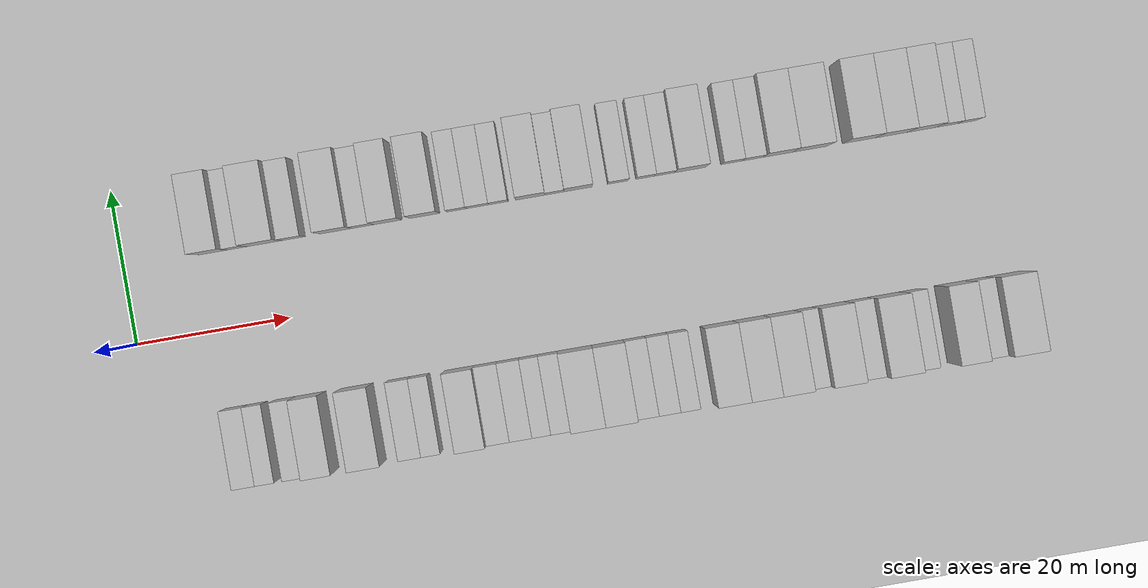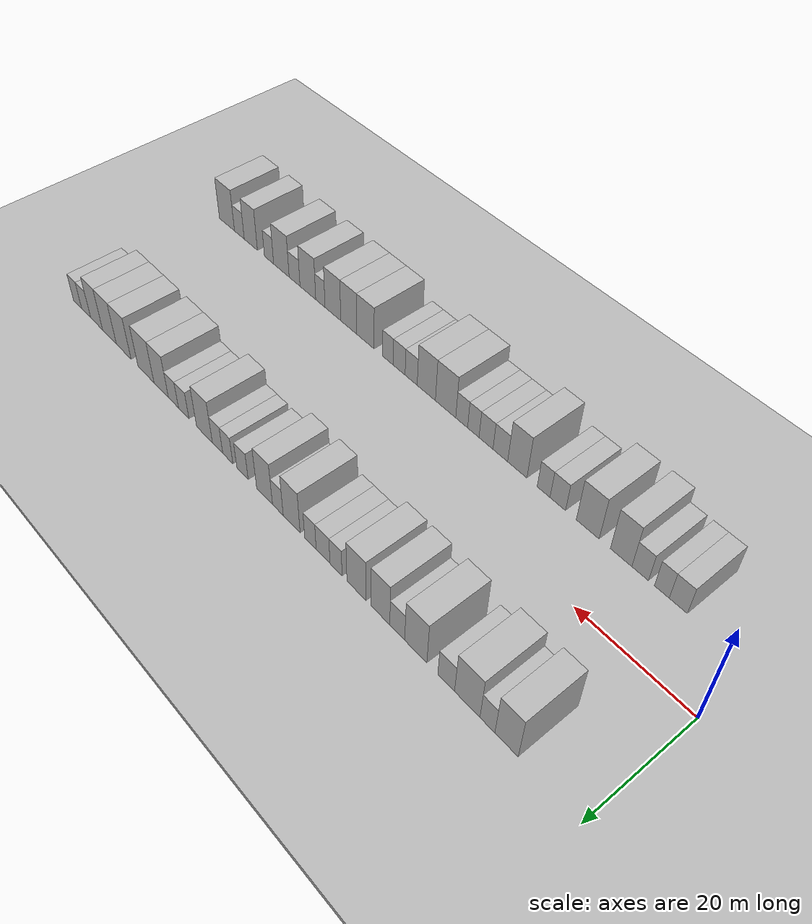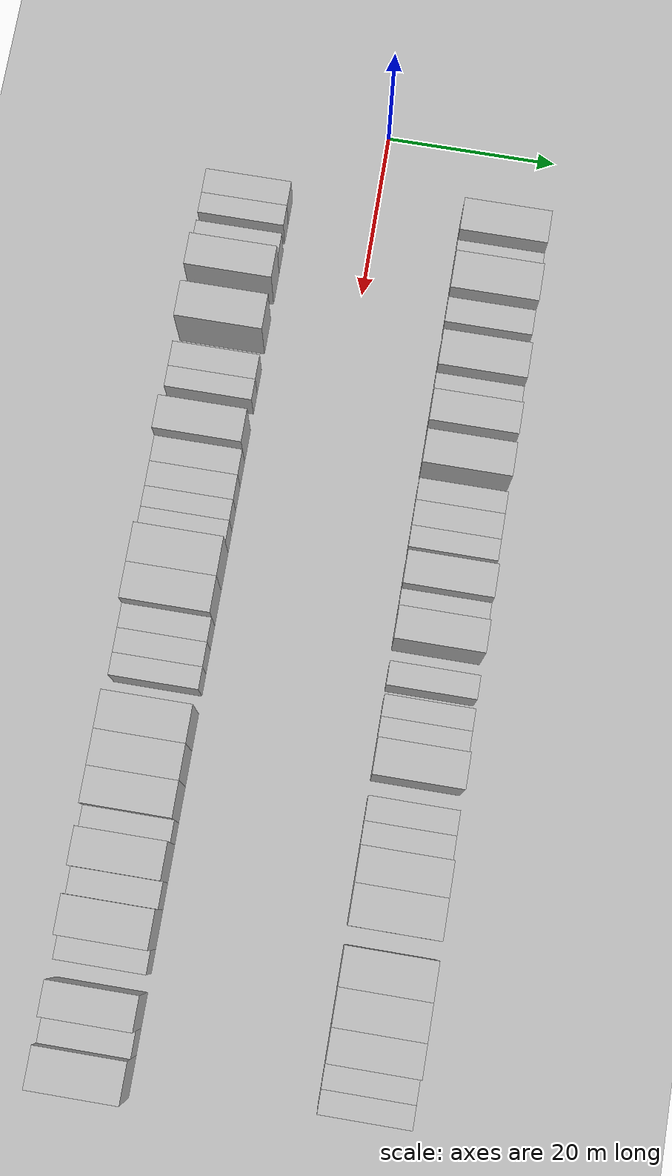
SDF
<sdf version="1.6">
 <world name="default">
  <include><name>ground_plane_1</name><uri>model://HANNAS_ground_plane</uri></include>
  <include>
   <name>ground_plane_2</name>
   <uri>model://HANNAS_ground_plane</uri>
   <pose>100 0 0  0 0 0</pose>
  </include>
  <model name="building_1">
   <static>1</static>
   <pose>11.9355 15.0000 0 0.000000 0.000000 1.570796</pose>
   <link name="link">
    <pose>0 0 4.50 0 0 0</pose>
    <collision name="collision"><geometry><box><size>10.0000 3.8709 9.0000</size></box></geometry></collision>
    <visual name="visual">
     <cast_shadows>0</cast_shadows>
     <geometry><box><size>10.0000 3.8709 9.0000</size></box></geometry>
     <material>
      <script>
       <uri>model://HANNAS_wall/materials/scripts</uri>
       <uri>model://HANNAS_wall/materials/textures</uri>
       <name>vrc/HANNAS_wall</name>
      </script>
     </material>
    </visual>
   </link>
  </model>
  <model name="building_2">
   <static>1</static>
   <pose>15.1357 15.0000 0 0.000000 0.000000 1.570796</pose>
   <link name="link">
    <pose>0 0 3.00 0 0 0</pose>
    <collision name="collision"><geometry><box><size>10.0000 2.5296 6.0000</size></box></geometry></collision>
    <visual name="visual">
     <cast_shadows>0</cast_shadows>
     <geometry><box><size>10.0000 2.5296 6.0000</size></box></geometry>
     <material>
      <script>
       <uri>model://HANNAS_wall/materials/scripts</uri>
       <uri>model://HANNAS_wall/materials/textures</uri>
       <name>vrc/HANNAS_wall</name>
      </script>
     </material>
    </visual>
   </link>
  </model>
  <model name="building_3">
   <static>1</static>
   <pose>18.6159 15.0000 0 0.000000 0.000000 1.570796</pose>
   <link name="link">
    <pose>0 0 4.50 0 0 0</pose>
    <collision name="collision"><geometry><box><size>10.0000 4.4307 9.0000</size></box></geometry></collision>
    <visual name="visual">
     <cast_shadows>0</cast_shadows>
     <geometry><box><size>10.0000 4.4307 9.0000</size></box></geometry>
     <material>
      <script>
       <uri>model://HANNAS_wall/materials/scripts</uri>
       <uri>model://HANNAS_wall/materials/textures</uri>
       <name>vrc/HANNAS_wall</name>
      </script>
     </material>
    </visual>
   </link>
  </model>
  <model name="building_4">
   <static>1</static>
   <pose>22.3298 15.0000 0 0.000000 0.000000 1.570796</pose>
   <link name="link">
    <pose>0 0 3.00 0 0 0</pose>
    <collision name="collision"><geometry><box><size>10.0000 2.9972 6.0000</size></box></geometry></collision>
    <visual name="visual">
     <cast_shadows>0</cast_shadows>
     <geometry><box><size>10.0000 2.9972 6.0000</size></box></geometry>
     <material>
      <script>
       <uri>model://HANNAS_wall/materials/scripts</uri>
       <uri>model://HANNAS_wall/materials/textures</uri>
       <name>vrc/HANNAS_wall</name>
      </script>
     </material>
    </visual>
   </link>
  </model>
  <model name="building_5">
   <static>1</static>
   <pose>27.8996 15.0000 0 0.000000 0.000000 1.570796</pose>
   <link name="link">
    <pose>0 0 4.50 0 0 0</pose>
    <collision name="collision"><geometry><box><size>10.0000 4.1425 9.0000</size></box></geometry></collision>
    <visual name="visual">
     <cast_shadows>0</cast_shadows>
     <geometry><box><size>10.0000 4.1425 9.0000</size></box></geometry>
     <material>
      <script>
       <uri>model://HANNAS_wall/materials/scripts</uri>
       <uri>model://HANNAS_wall/materials/textures</uri>
       <name>vrc/HANNAS_wall</name>
      </script>
     </material>
    </visual>
   </link>
  </model>
  <model name="building_6">
   <static>1</static>
   <pose>31.3976 15.0000 0 0.000000 0.000000 1.570796</pose>
   <link name="link">
    <pose>0 0 3.00 0 0 0</pose>
    <collision name="collision"><geometry><box><size>10.0000 2.8534 6.0000</size></box></geometry></collision>
    <visual name="visual">
     <cast_shadows>0</cast_shadows>
     <geometry><box><size>10.0000 2.8534 6.0000</size></box></geometry>
     <material>
      <script>
       <uri>model://HANNAS_wall/materials/scripts</uri>
       <uri>model://HANNAS_wall/materials/textures</uri>
       <name>vrc/HANNAS_wall</name>
      </script>
     </material>
    </visual>
   </link>
  </model>
  <model name="building_7">
   <static>1</static>
   <pose>34.6530 15.0000 0 0.000000 0.000000 1.570796</pose>
   <link name="link">
    <pose>0 0 4.50 0 0 0</pose>
    <collision name="collision"><geometry><box><size>10.0000 3.6575 9.0000</size></box></geometry></collision>
    <visual name="visual">
     <cast_shadows>0</cast_shadows>
     <geometry><box><size>10.0000 3.6575 9.0000</size></box></geometry>
     <material>
      <script>
       <uri>model://HANNAS_wall/materials/scripts</uri>
       <uri>model://HANNAS_wall/materials/textures</uri>
       <name>vrc/HANNAS_wall</name>
      </script>
     </material>
    </visual>
   </link>
  </model>
  <model name="building_8">
   <static>1</static>
   <pose>39.4240 15.0000 0 0.000000 0.000000 1.570796</pose>
   <link name="link">
    <pose>0 0 4.50 0 0 0</pose>
    <collision name="collision"><geometry><box><size>10.0000 3.8845 9.0000</size></box></geometry></collision>
    <visual name="visual">
     <cast_shadows>0</cast_shadows>
     <geometry><box><size>10.0000 3.8845 9.0000</size></box></geometry>
     <material>
      <script>
       <uri>model://HANNAS_wall/materials/scripts</uri>
       <uri>model://HANNAS_wall/materials/textures</uri>
       <name>vrc/HANNAS_wall</name>
      </script>
     </material>
    </visual>
   </link>
  </model>
  <model name="building_9">
   <static>1</static>
   <pose>43.6304 15.0000 0 0.000000 0.000000 1.570796</pose>
   <link name="link">
    <pose>0 0 3.00 0 0 0</pose>
    <collision name="collision"><geometry><box><size>10.0000 2.5283 6.0000</size></box></geometry></collision>
    <visual name="visual">
     <cast_shadows>0</cast_shadows>
     <geometry><box><size>10.0000 2.5283 6.0000</size></box></geometry>
     <material>
      <script>
       <uri>model://HANNAS_wall/materials/scripts</uri>
       <uri>model://HANNAS_wall/materials/textures</uri>
       <name>vrc/HANNAS_wall</name>
      </script>
     </material>
    </visual>
   </link>
  </model>
  <model name="building_10">
   <static>1</static>
   <pose>46.3620 15.0000 0 0.000000 0.000000 1.570796</pose>
   <link name="link">
    <pose>0 0 3.00 0 0 0</pose>
    <collision name="collision"><geometry><box><size>10.0000 2.9349 6.0000</size></box></geometry></collision>
    <visual name="visual">
     <cast_shadows>0</cast_shadows>
     <geometry><box><size>10.0000 2.9349 6.0000</size></box></geometry>
     <material>
      <script>
       <uri>model://HANNAS_wall/materials/scripts</uri>
       <uri>model://HANNAS_wall/materials/textures</uri>
       <name>vrc/HANNAS_wall</name>
      </script>
     </material>
    </visual>
   </link>
  </model>
  <model name="building_11">
   <static>1</static>
   <pose>49.0717 15.0000 0 0.000000 0.000000 1.570796</pose>
   <link name="link">
    <pose>0 0 3.00 0 0 0</pose>
    <collision name="collision"><geometry><box><size>10.0000 2.4846 6.0000</size></box></geometry></collision>
    <visual name="visual">
     <cast_shadows>0</cast_shadows>
     <geometry><box><size>10.0000 2.4846 6.0000</size></box></geometry>
     <material>
      <script>
       <uri>model://HANNAS_wall/materials/scripts</uri>
       <uri>model://HANNAS_wall/materials/textures</uri>
       <name>vrc/HANNAS_wall</name>
      </script>
     </material>
    </visual>
   </link>
  </model>
  <model name="building_12">
   <static>1</static>
   <pose>53.1930 15.0000 0 0.000000 0.000000 1.570796</pose>
   <link name="link">
    <pose>0 0 4.50 0 0 0</pose>
    <collision name="collision"><geometry><box><size>10.0000 3.7579 9.0000</size></box></geometry></collision>
    <visual name="visual">
     <cast_shadows>0</cast_shadows>
     <geometry><box><size>10.0000 3.7579 9.0000</size></box></geometry>
     <material>
      <script>
       <uri>model://HANNAS_wall/materials/scripts</uri>
       <uri>model://HANNAS_wall/materials/textures</uri>
       <name>vrc/HANNAS_wall</name>
      </script>
     </material>
    </visual>
   </link>
  </model>
  <model name="building_13">
   <static>1</static>
   <pose>56.2924 15.0000 0 0.000000 0.000000 1.570796</pose>
   <link name="link">
    <pose>0 0 3.00 0 0 0</pose>
    <collision name="collision"><geometry><box><size>10.0000 2.4409 6.0000</size></box></geometry></collision>
    <visual name="visual">
     <cast_shadows>0</cast_shadows>
     <geometry><box><size>10.0000 2.4409 6.0000</size></box></geometry>
     <material>
      <script>
       <uri>model://HANNAS_wall/materials/scripts</uri>
       <uri>model://HANNAS_wall/materials/textures</uri>
       <name>vrc/HANNAS_wall</name>
      </script>
     </material>
    </visual>
   </link>
  </model>
  <model name="building_14">
   <static>1</static>
   <pose>59.3512 15.0000 0 0.000000 0.000000 1.570796</pose>
   <link name="link">
    <pose>0 0 4.50 0 0 0</pose>
    <collision name="collision"><geometry><box><size>10.0000 3.6767 9.0000</size></box></geometry></collision>
    <visual name="visual">
     <cast_shadows>0</cast_shadows>
     <geometry><box><size>10.0000 3.6767 9.0000</size></box></geometry>
     <material>
      <script>
       <uri>model://HANNAS_wall/materials/scripts</uri>
       <uri>model://HANNAS_wall/materials/textures</uri>
       <name>vrc/HANNAS_wall</name>
      </script>
     </material>
    </visual>
   </link>
  </model>
  <model name="building_15">
   <static>1</static>
   <pose>64.5397 15.0000 0 0.000000 0.000000 1.570796</pose>
   <link name="link">
    <pose>0 0 3.00 0 0 0</pose>
    <collision name="collision"><geometry><box><size>10.0000 2.7004 6.0000</size></box></geometry></collision>
    <visual name="visual">
     <cast_shadows>0</cast_shadows>
     <geometry><box><size>10.0000 2.7004 6.0000</size></box></geometry>
     <material>
      <script>
       <uri>model://HANNAS_wall/materials/scripts</uri>
       <uri>model://HANNAS_wall/materials/textures</uri>
       <name>vrc/HANNAS_wall</name>
      </script>
     </material>
    </visual>
   </link>
  </model>
  <model name="building_16">
   <static>1</static>
   <pose>68.1228 15.0000 0 0.000000 0.000000 1.570796</pose>
   <link name="link">
    <pose>0 0 3.00 0 0 0</pose>
    <collision name="collision"><geometry><box><size>10.0000 2.4657 6.0000</size></box></geometry></collision>
    <visual name="visual">
     <cast_shadows>0</cast_shadows>
     <geometry><box><size>10.0000 2.4657 6.0000</size></box></geometry>
     <material>
      <script>
       <uri>model://HANNAS_wall/materials/scripts</uri>
       <uri>model://HANNAS_wall/materials/textures</uri>
       <name>vrc/HANNAS_wall</name>
      </script>
     </material>
    </visual>
   </link>
  </model>
  <model name="building_17">
   <static>1</static>
   <pose>70.6452 15.0000 0 0.000000 0.000000 1.570796</pose>
   <link name="link">
    <pose>0 0 3.00 0 0 0</pose>
    <collision name="collision"><geometry><box><size>10.0000 2.5791 6.0000</size></box></geometry></collision>
    <visual name="visual">
     <cast_shadows>0</cast_shadows>
     <geometry><box><size>10.0000 2.5791 6.0000</size></box></geometry>
     <material>
      <script>
       <uri>model://HANNAS_wall/materials/scripts</uri>
       <uri>model://HANNAS_wall/materials/textures</uri>
       <name>vrc/HANNAS_wall</name>
      </script>
     </material>
    </visual>
   </link>
  </model>
  <model name="building_18">
   <static>1</static>
   <pose>73.9491 15.0000 0 0.000000 0.000000 1.570796</pose>
   <link name="link">
    <pose>0 0 4.50 0 0 0</pose>
    <collision name="collision"><geometry><box><size>10.0000 4.0286 9.0000</size></box></geometry></collision>
    <visual name="visual">
     <cast_shadows>0</cast_shadows>
     <geometry><box><size>10.0000 4.0286 9.0000</size></box></geometry>
     <material>
      <script>
       <uri>model://HANNAS_wall/materials/scripts</uri>
       <uri>model://HANNAS_wall/materials/textures</uri>
       <name>vrc/HANNAS_wall</name>
      </script>
     </material>
    </visual>
   </link>
  </model>
  <model name="building_19">
   <static>1</static>
   <pose>79.3284 15.0000 0 0.000000 0.000000 1.570796</pose>
   <link name="link">
    <pose>0 0 3.00 0 0 0</pose>
    <collision name="collision"><geometry><box><size>10.0000 2.7300 6.0000</size></box></geometry></collision>
    <visual name="visual">
     <cast_shadows>0</cast_shadows>
     <geometry><box><size>10.0000 2.7300 6.0000</size></box></geometry>
     <material>
      <script>
       <uri>model://HANNAS_wall/materials/scripts</uri>
       <uri>model://HANNAS_wall/materials/textures</uri>
       <name>vrc/HANNAS_wall</name>
      </script>
     </material>
    </visual>
   </link>
  </model>
  <model name="building_20">
   <static>1</static>
   <pose>82.0445 15.0000 0 0.000000 0.000000 1.570796</pose>
   <link name="link">
    <pose>0 0 3.00 0 0 0</pose>
    <collision name="collision"><geometry><box><size>10.0000 2.7021 6.0000</size></box></geometry></collision>
    <visual name="visual">
     <cast_shadows>0</cast_shadows>
     <geometry><box><size>10.0000 2.7021 6.0000</size></box></geometry>
     <material>
      <script>
       <uri>model://HANNAS_wall/materials/scripts</uri>
       <uri>model://HANNAS_wall/materials/textures</uri>
       <name>vrc/HANNAS_wall</name>
      </script>
     </material>
    </visual>
   </link>
  </model>
  <model name="building_21">
   <static>1</static>
   <pose>85.3691 15.0000 0 0.000000 0.000000 1.570796</pose>
   <link name="link">
    <pose>0 0 4.50 0 0 0</pose>
    <collision name="collision"><geometry><box><size>10.0000 3.9471 9.0000</size></box></geometry></collision>
    <visual name="visual">
     <cast_shadows>0</cast_shadows>
     <geometry><box><size>10.0000 3.9471 9.0000</size></box></geometry>
     <material>
      <script>
       <uri>model://HANNAS_wall/materials/scripts</uri>
       <uri>model://HANNAS_wall/materials/textures</uri>
       <name>vrc/HANNAS_wall</name>
      </script>
     </material>
    </visual>
   </link>
  </model>
  <model name="building_22">
   <static>1</static>
   <pose>89.5817 15.0000 0 0.000000 0.000000 1.570796</pose>
   <link name="link">
    <pose>0 0 4.50 0 0 0</pose>
    <collision name="collision"><geometry><box><size>10.0000 4.4781 9.0000</size></box></geometry></collision>
    <visual name="visual">
     <cast_shadows>0</cast_shadows>
     <geometry><box><size>10.0000 4.4781 9.0000</size></box></geometry>
     <material>
      <script>
       <uri>model://HANNAS_wall/materials/scripts</uri>
       <uri>model://HANNAS_wall/materials/textures</uri>
       <name>vrc/HANNAS_wall</name>
      </script>
     </material>
    </visual>
   </link>
  </model>
  <model name="building_23">
   <static>1</static>
   <pose>95.9513 15.0000 0 0.000000 0.000000 1.570796</pose>
   <link name="link">
    <pose>0 0 4.50 0 0 0</pose>
    <collision name="collision"><geometry><box><size>10.0000 4.2611 9.0000</size></box></geometry></collision>
    <visual name="visual">
     <cast_shadows>0</cast_shadows>
     <geometry><box><size>10.0000 4.2611 9.0000</size></box></geometry>
     <material>
      <script>
       <uri>model://HANNAS_wall/materials/scripts</uri>
       <uri>model://HANNAS_wall/materials/textures</uri>
       <name>vrc/HANNAS_wall</name>
      </script>
     </material>
    </visual>
   </link>
  </model>
  <model name="building_24">
   <static>1</static>
   <pose>100.1310 15.0000 0 0.000000 0.000000 1.570796</pose>
   <link name="link">
    <pose>0 0 4.50 0 0 0</pose>
    <collision name="collision"><geometry><box><size>10.0000 4.0983 9.0000</size></box></geometry></collision>
    <visual name="visual">
     <cast_shadows>0</cast_shadows>
     <geometry><box><size>10.0000 4.0983 9.0000</size></box></geometry>
     <material>
      <script>
       <uri>model://HANNAS_wall/materials/scripts</uri>
       <uri>model://HANNAS_wall/materials/textures</uri>
       <name>vrc/HANNAS_wall</name>
      </script>
     </material>
    </visual>
   </link>
  </model>
  <model name="building_25">
   <static>1</static>
   <pose>104.0064 15.0000 0 0.000000 0.000000 1.570796</pose>
   <link name="link">
    <pose>0 0 4.50 0 0 0</pose>
    <collision name="collision"><geometry><box><size>10.0000 3.6526 9.0000</size></box></geometry></collision>
    <visual name="visual">
     <cast_shadows>0</cast_shadows>
     <geometry><box><size>10.0000 3.6526 9.0000</size></box></geometry>
     <material>
      <script>
       <uri>model://HANNAS_wall/materials/scripts</uri>
       <uri>model://HANNAS_wall/materials/textures</uri>
       <name>vrc/HANNAS_wall</name>
      </script>
     </material>
    </visual>
   </link>
  </model>
  <model name="building_26">
   <static>1</static>
   <pose>107.2340 15.0000 0 0.000000 0.000000 1.570796</pose>
   <link name="link">
    <pose>0 0 3.00 0 0 0</pose>
    <collision name="collision"><geometry><box><size>10.0000 2.8026 6.0000</size></box></geometry></collision>
    <visual name="visual">
     <cast_shadows>0</cast_shadows>
     <geometry><box><size>10.0000 2.8026 6.0000</size></box></geometry>
     <material>
      <script>
       <uri>model://HANNAS_wall/materials/scripts</uri>
       <uri>model://HANNAS_wall/materials/textures</uri>
       <name>vrc/HANNAS_wall</name>
      </script>
     </material>
    </visual>
   </link>
  </model>
  <model name="building_27">
   <static>1</static>
   <pose>109.9182 15.0000 0 0.000000 0.000000 1.570796</pose>
   <link name="link">
    <pose>0 0 3.00 0 0 0</pose>
    <collision name="collision"><geometry><box><size>10.0000 2.5657 6.0000</size></box></geometry></collision>
    <visual name="visual">
     <cast_shadows>0</cast_shadows>
     <geometry><box><size>10.0000 2.5657 6.0000</size></box></geometry>
     <material>
      <script>
       <uri>model://HANNAS_wall/materials/scripts</uri>
       <uri>model://HANNAS_wall/materials/textures</uri>
       <name>vrc/HANNAS_wall</name>
      </script>
     </material>
    </visual>
   </link>
  </model>
  <model name="building_57">
   <static>1</static>
   <pose>11.4850 -15.0000 0 0.000000 0.000000 1.570796</pose>
   <link name="link">
    <pose>0 0 3.00 0 0 0</pose>
    <collision name="collision"><geometry><box><size>10.0000 2.9699 6.0000</size></box></geometry></collision>
    <visual name="visual">
     <cast_shadows>0</cast_shadows>
     <geometry><box><size>10.0000 2.9699 6.0000</size></box></geometry>
     <material>
      <script>
       <uri>model://HANNAS_wall/materials/scripts</uri>
       <uri>model://HANNAS_wall/materials/textures</uri>
       <name>vrc/HANNAS_wall</name>
      </script>
     </material>
    </visual>
   </link>
  </model>
  <model name="building_58">
   <static>1</static>
   <pose>14.2070 -15.0000 0 0.000000 0.000000 1.570796</pose>
   <link name="link">
    <pose>0 0 3.00 0 0 0</pose>
    <collision name="collision"><geometry><box><size>10.0000 2.4742 6.0000</size></box></geometry></collision>
    <visual name="visual">
     <cast_shadows>0</cast_shadows>
     <geometry><box><size>10.0000 2.4742 6.0000</size></box></geometry>
     <material>
      <script>
       <uri>model://HANNAS_wall/materials/scripts</uri>
       <uri>model://HANNAS_wall/materials/textures</uri>
       <name>vrc/HANNAS_wall</name>
      </script>
     </material>
    </visual>
   </link>
  </model>
  <model name="building_59">
   <static>1</static>
   <pose>17.8604 -15.0000 0 0.000000 0.000000 1.570796</pose>
   <link name="link">
    <pose>0 0 3.00 0 0 0</pose>
    <collision name="collision"><geometry><box><size>10.0000 2.8324 6.0000</size></box></geometry></collision>
    <visual name="visual">
     <cast_shadows>0</cast_shadows>
     <geometry><box><size>10.0000 2.8324 6.0000</size></box></geometry>
     <material>
      <script>
       <uri>model://HANNAS_wall/materials/scripts</uri>
       <uri>model://HANNAS_wall/materials/textures</uri>
       <name>vrc/HANNAS_wall</name>
      </script>
     </material>
    </visual>
   </link>
  </model>
  <model name="building_60">
   <static>1</static>
   <pose>21.1529 -15.0000 0 0.000000 0.000000 1.570796</pose>
   <link name="link">
    <pose>0 0 4.50 0 0 0</pose>
    <collision name="collision"><geometry><box><size>10.0000 3.7526 9.0000</size></box></geometry></collision>
    <visual name="visual">
     <cast_shadows>0</cast_shadows>
     <geometry><box><size>10.0000 3.7526 9.0000</size></box></geometry>
     <material>
      <script>
       <uri>model://HANNAS_wall/materials/scripts</uri>
       <uri>model://HANNAS_wall/materials/textures</uri>
       <name>vrc/HANNAS_wall</name>
      </script>
     </material>
    </visual>
   </link>
  </model>
  <model name="building_61">
   <static>1</static>
   <pose>27.1117 -15.0000 0 0.000000 0.000000 1.570796</pose>
   <link name="link">
    <pose>0 0 4.50 0 0 0</pose>
    <collision name="collision"><geometry><box><size>10.0000 4.1650 9.0000</size></box></geometry></collision>
    <visual name="visual">
     <cast_shadows>0</cast_shadows>
     <geometry><box><size>10.0000 4.1650 9.0000</size></box></geometry>
     <material>
      <script>
       <uri>model://HANNAS_wall/materials/scripts</uri>
       <uri>model://HANNAS_wall/materials/textures</uri>
       <name>vrc/HANNAS_wall</name>
      </script>
     </material>
    </visual>
   </link>
  </model>
  <model name="building_62">
   <static>1</static>
   <pose>32.6593 -15.0000 0 0.000000 0.000000 1.570796</pose>
   <link name="link">
    <pose>0 0 3.00 0 0 0</pose>
    <collision name="collision"><geometry><box><size>10.0000 2.9300 6.0000</size></box></geometry></collision>
    <visual name="visual">
     <cast_shadows>0</cast_shadows>
     <geometry><box><size>10.0000 2.9300 6.0000</size></box></geometry>
     <material>
      <script>
       <uri>model://HANNAS_wall/materials/scripts</uri>
       <uri>model://HANNAS_wall/materials/textures</uri>
       <name>vrc/HANNAS_wall</name>
      </script>
     </material>
    </visual>
   </link>
  </model>
  <model name="building_63">
   <static>1</static>
   <pose>35.3552 -15.0000 0 0.000000 0.000000 1.570796</pose>
   <link name="link">
    <pose>0 0 3.00 0 0 0</pose>
    <collision name="collision"><geometry><box><size>10.0000 2.4617 6.0000</size></box></geometry></collision>
    <visual name="visual">
     <cast_shadows>0</cast_shadows>
     <geometry><box><size>10.0000 2.4617 6.0000</size></box></geometry>
     <material>
      <script>
       <uri>model://HANNAS_wall/materials/scripts</uri>
       <uri>model://HANNAS_wall/materials/textures</uri>
       <name>vrc/HANNAS_wall</name>
      </script>
     </material>
    </visual>
   </link>
  </model>
  <model name="building_64">
   <static>1</static>
   <pose>40.5013 -15.0000 0 0.000000 0.000000 1.570796</pose>
   <link name="link">
    <pose>0 0 4.50 0 0 0</pose>
    <collision name="collision"><geometry><box><size>10.0000 3.8306 9.0000</size></box></geometry></collision>
    <visual name="visual">
     <cast_shadows>0</cast_shadows>
     <geometry><box><size>10.0000 3.8306 9.0000</size></box></geometry>
     <material>
      <script>
       <uri>model://HANNAS_wall/materials/scripts</uri>
       <uri>model://HANNAS_wall/materials/textures</uri>
       <name>vrc/HANNAS_wall</name>
      </script>
     </material>
    </visual>
   </link>
  </model>
  <model name="building_65">
   <static>1</static>
   <pose>43.9075 -15.0000 0 0.000000 0.000000 1.570796</pose>
   <link name="link">
    <pose>0 0 3.00 0 0 0</pose>
    <collision name="collision"><geometry><box><size>10.0000 2.9819 6.0000</size></box></geometry></collision>
    <visual name="visual">
     <cast_shadows>0</cast_shadows>
     <geometry><box><size>10.0000 2.9819 6.0000</size></box></geometry>
     <material>
      <script>
       <uri>model://HANNAS_wall/materials/scripts</uri>
       <uri>model://HANNAS_wall/materials/textures</uri>
       <name>vrc/HANNAS_wall</name>
      </script>
     </material>
    </visual>
   </link>
  </model>
  <model name="building_66">
   <static>1</static>
   <pose>46.8391 -15.0000 0 0.000000 0.000000 1.570796</pose>
   <link name="link">
    <pose>0 0 3.00 0 0 0</pose>
    <collision name="collision"><geometry><box><size>10.0000 2.8814 6.0000</size></box></geometry></collision>
    <visual name="visual">
     <cast_shadows>0</cast_shadows>
     <geometry><box><size>10.0000 2.8814 6.0000</size></box></geometry>
     <material>
      <script>
       <uri>model://HANNAS_wall/materials/scripts</uri>
       <uri>model://HANNAS_wall/materials/textures</uri>
       <name>vrc/HANNAS_wall</name>
      </script>
     </material>
    </visual>
   </link>
  </model>
  <model name="building_67">
   <static>1</static>
   <pose>49.4805 -15.0000 0 0.000000 0.000000 1.570796</pose>
   <link name="link">
    <pose>0 0 3.00 0 0 0</pose>
    <collision name="collision"><geometry><box><size>10.0000 2.4014 6.0000</size></box></geometry></collision>
    <visual name="visual">
     <cast_shadows>0</cast_shadows>
     <geometry><box><size>10.0000 2.4014 6.0000</size></box></geometry>
     <material>
      <script>
       <uri>model://HANNAS_wall/materials/scripts</uri>
       <uri>model://HANNAS_wall/materials/textures</uri>
       <name>vrc/HANNAS_wall</name>
      </script>
     </material>
    </visual>
   </link>
  </model>
  <model name="building_68">
   <static>1</static>
   <pose>51.9470 -15.0000 0 0.000000 0.000000 1.570796</pose>
   <link name="link">
    <pose>0 0 3.00 0 0 0</pose>
    <collision name="collision"><geometry><box><size>10.0000 2.5317 6.0000</size></box></geometry></collision>
    <visual name="visual">
     <cast_shadows>0</cast_shadows>
     <geometry><box><size>10.0000 2.5317 6.0000</size></box></geometry>
     <material>
      <script>
       <uri>model://HANNAS_wall/materials/scripts</uri>
       <uri>model://HANNAS_wall/materials/textures</uri>
       <name>vrc/HANNAS_wall</name>
      </script>
     </material>
    </visual>
   </link>
  </model>
  <model name="building_69">
   <static>1</static>
   <pose>55.4291 -15.0000 0 0.000000 0.000000 1.570796</pose>
   <link name="link">
    <pose>0 0 4.50 0 0 0</pose>
    <collision name="collision"><geometry><box><size>10.0000 4.4325 9.0000</size></box></geometry></collision>
    <visual name="visual">
     <cast_shadows>0</cast_shadows>
     <geometry><box><size>10.0000 4.4325 9.0000</size></box></geometry>
     <material>
      <script>
       <uri>model://HANNAS_wall/materials/scripts</uri>
       <uri>model://HANNAS_wall/materials/textures</uri>
       <name>vrc/HANNAS_wall</name>
      </script>
     </material>
    </visual>
   </link>
  </model>
  <model name="building_70">
   <static>1</static>
   <pose>59.6836 -15.0000 0 0.000000 0.000000 1.570796</pose>
   <link name="link">
    <pose>0 0 4.50 0 0 0</pose>
    <collision name="collision"><geometry><box><size>10.0000 4.0765 9.0000</size></box></geometry></collision>
    <visual name="visual">
     <cast_shadows>0</cast_shadows>
     <geometry><box><size>10.0000 4.0765 9.0000</size></box></geometry>
     <material>
      <script>
       <uri>model://HANNAS_wall/materials/scripts</uri>
       <uri>model://HANNAS_wall/materials/textures</uri>
       <name>vrc/HANNAS_wall</name>
      </script>
     </material>
    </visual>
   </link>
  </model>
  <model name="building_71">
   <static>1</static>
   <pose>63.1072 -15.0000 0 0.000000 0.000000 1.570796</pose>
   <link name="link">
    <pose>0 0 3.00 0 0 0</pose>
    <collision name="collision"><geometry><box><size>10.0000 2.7708 6.0000</size></box></geometry></collision>
    <visual name="visual">
     <cast_shadows>0</cast_shadows>
     <geometry><box><size>10.0000 2.7708 6.0000</size></box></geometry>
     <material>
      <script>
       <uri>model://HANNAS_wall/materials/scripts</uri>
       <uri>model://HANNAS_wall/materials/textures</uri>
       <name>vrc/HANNAS_wall</name>
      </script>
     </material>
    </visual>
   </link>
  </model>
  <model name="building_72">
   <static>1</static>
   <pose>65.8758 -15.0000 0 0.000000 0.000000 1.570796</pose>
   <link name="link">
    <pose>0 0 3.00 0 0 0</pose>
    <collision name="collision"><geometry><box><size>10.0000 2.7663 6.0000</size></box></geometry></collision>
    <visual name="visual">
     <cast_shadows>0</cast_shadows>
     <geometry><box><size>10.0000 2.7663 6.0000</size></box></geometry>
     <material>
      <script>
       <uri>model://HANNAS_wall/materials/scripts</uri>
       <uri>model://HANNAS_wall/materials/textures</uri>
       <name>vrc/HANNAS_wall</name>
      </script>
     </material>
    </visual>
   </link>
  </model>
  <model name="building_73">
   <static>1</static>
   <pose>68.5215 -15.0000 0 0.000000 0.000000 1.570796</pose>
   <link name="link">
    <pose>0 0 3.00 0 0 0</pose>
    <collision name="collision"><geometry><box><size>10.0000 2.5252 6.0000</size></box></geometry></collision>
    <visual name="visual">
     <cast_shadows>0</cast_shadows>
     <geometry><box><size>10.0000 2.5252 6.0000</size></box></geometry>
     <material>
      <script>
       <uri>model://HANNAS_wall/materials/scripts</uri>
       <uri>model://HANNAS_wall/materials/textures</uri>
       <name>vrc/HANNAS_wall</name>
      </script>
     </material>
    </visual>
   </link>
  </model>
  <model name="building_74">
   <static>1</static>
   <pose>73.8981 -15.0000 0 0.000000 0.000000 1.570796</pose>
   <link name="link">
    <pose>0 0 4.50 0 0 0</pose>
    <collision name="collision"><geometry><box><size>10.0000 4.2282 9.0000</size></box></geometry></collision>
    <visual name="visual">
     <cast_shadows>0</cast_shadows>
     <geometry><box><size>10.0000 4.2282 9.0000</size></box></geometry>
     <material>
      <script>
       <uri>model://HANNAS_wall/materials/scripts</uri>
       <uri>model://HANNAS_wall/materials/textures</uri>
       <name>vrc/HANNAS_wall</name>
      </script>
     </material>
    </visual>
   </link>
  </model>
  <model name="building_75">
   <static>1</static>
   <pose>77.9953 -15.0000 0 0.000000 0.000000 1.570796</pose>
   <link name="link">
    <pose>0 0 4.50 0 0 0</pose>
    <collision name="collision"><geometry><box><size>10.0000 3.9661 9.0000</size></box></geometry></collision>
    <visual name="visual">
     <cast_shadows>0</cast_shadows>
     <geometry><box><size>10.0000 3.9661 9.0000</size></box></geometry>
     <material>
      <script>
       <uri>model://HANNAS_wall/materials/scripts</uri>
       <uri>model://HANNAS_wall/materials/textures</uri>
       <name>vrc/HANNAS_wall</name>
      </script>
     </material>
    </visual>
   </link>
  </model>
  <model name="building_76">
   <static>1</static>
   <pose>81.9830 -15.0000 0 0.000000 0.000000 1.570796</pose>
   <link name="link">
    <pose>0 0 4.50 0 0 0</pose>
    <collision name="collision"><geometry><box><size>10.0000 4.0092 9.0000</size></box></geometry></collision>
    <visual name="visual">
     <cast_shadows>0</cast_shadows>
     <geometry><box><size>10.0000 4.0092 9.0000</size></box></geometry>
     <material>
      <script>
       <uri>model://HANNAS_wall/materials/scripts</uri>
       <uri>model://HANNAS_wall/materials/textures</uri>
       <name>vrc/HANNAS_wall</name>
      </script>
     </material>
    </visual>
   </link>
  </model>
  <model name="building_77">
   <static>1</static>
   <pose>85.1960 -15.0000 0 0.000000 0.000000 1.570796</pose>
   <link name="link">
    <pose>0 0 3.00 0 0 0</pose>
    <collision name="collision"><geometry><box><size>10.0000 2.4168 6.0000</size></box></geometry></collision>
    <visual name="visual">
     <cast_shadows>0</cast_shadows>
     <geometry><box><size>10.0000 2.4168 6.0000</size></box></geometry>
     <material>
      <script>
       <uri>model://HANNAS_wall/materials/scripts</uri>
       <uri>model://HANNAS_wall/materials/textures</uri>
       <name>vrc/HANNAS_wall</name>
      </script>
     </material>
    </visual>
   </link>
  </model>
  <model name="building_78">
   <static>1</static>
   <pose>88.4814 -15.0000 0 0.000000 0.000000 1.570796</pose>
   <link name="link">
    <pose>0 0 4.50 0 0 0</pose>
    <collision name="collision"><geometry><box><size>10.0000 4.1541 9.0000</size></box></geometry></collision>
    <visual name="visual">
     <cast_shadows>0</cast_shadows>
     <geometry><box><size>10.0000 4.1541 9.0000</size></box></geometry>
     <material>
      <script>
       <uri>model://HANNAS_wall/materials/scripts</uri>
       <uri>model://HANNAS_wall/materials/textures</uri>
       <name>vrc/HANNAS_wall</name>
      </script>
     </material>
    </visual>
   </link>
  </model>
  <model name="building_79">
   <static>1</static>
   <pose>92.0271 -15.0000 0 0.000000 0.000000 1.570796</pose>
   <link name="link">
    <pose>0 0 3.00 0 0 0</pose>
    <collision name="collision"><geometry><box><size>10.0000 2.9373 6.0000</size></box></geometry></collision>
    <visual name="visual">
     <cast_shadows>0</cast_shadows>
     <geometry><box><size>10.0000 2.9373 6.0000</size></box></geometry>
     <material>
      <script>
       <uri>model://HANNAS_wall/materials/scripts</uri>
       <uri>model://HANNAS_wall/materials/textures</uri>
       <name>vrc/HANNAS_wall</name>
      </script>
     </material>
    </visual>
   </link>
  </model>
  <model name="building_80">
   <static>1</static>
   <pose>95.6276 -15.0000 0 0.000000 0.000000 1.570796</pose>
   <link name="link">
    <pose>0 0 4.50 0 0 0</pose>
    <collision name="collision"><geometry><box><size>10.0000 4.2637 9.0000</size></box></geometry></collision>
    <visual name="visual">
     <cast_shadows>0</cast_shadows>
     <geometry><box><size>10.0000 4.2637 9.0000</size></box></geometry>
     <material>
      <script>
       <uri>model://HANNAS_wall/materials/scripts</uri>
       <uri>model://HANNAS_wall/materials/textures</uri>
       <name>vrc/HANNAS_wall</name>
      </script>
     </material>
    </visual>
   </link>
  </model>
  <model name="building_81">
   <static>1</static>
   <pose>99.0463 -15.0000 0 0.000000 0.000000 1.570796</pose>
   <link name="link">
    <pose>0 0 3.00 0 0 0</pose>
    <collision name="collision"><geometry><box><size>10.0000 2.5738 6.0000</size></box></geometry></collision>
    <visual name="visual">
     <cast_shadows>0</cast_shadows>
     <geometry><box><size>10.0000 2.5738 6.0000</size></box></geometry>
     <material>
      <script>
       <uri>model://HANNAS_wall/materials/scripts</uri>
       <uri>model://HANNAS_wall/materials/textures</uri>
       <name>vrc/HANNAS_wall</name>
      </script>
     </material>
    </visual>
   </link>
  </model>
  <model name="building_82">
   <static>1</static>
   <pose>104.2264 -15.0000 0 0.000000 0.000000 1.570796</pose>
   <link name="link">
    <pose>0 0 4.50 0 0 0</pose>
    <collision name="collision"><geometry><box><size>10.0000 3.7864 9.0000</size></box></geometry></collision>
    <visual name="visual">
     <cast_shadows>0</cast_shadows>
     <geometry><box><size>10.0000 3.7864 9.0000</size></box></geometry>
     <material>
      <script>
       <uri>model://HANNAS_wall/materials/scripts</uri>
       <uri>model://HANNAS_wall/materials/textures</uri>
       <name>vrc/HANNAS_wall</name>
      </script>
     </material>
    </visual>
   </link>
  </model>
  <model name="building_83">
   <static>1</static>
   <pose>107.5464 -15.0000 0 0.000000 0.000000 1.570796</pose>
   <link name="link">
    <pose>0 0 3.00 0 0 0</pose>
    <collision name="collision"><geometry><box><size>10.0000 2.8536 6.0000</size></box></geometry></collision>
    <visual name="visual">
     <cast_shadows>0</cast_shadows>
     <geometry><box><size>10.0000 2.8536 6.0000</size></box></geometry>
     <material>
      <script>
       <uri>model://HANNAS_wall/materials/scripts</uri>
       <uri>model://HANNAS_wall/materials/textures</uri>
       <name>vrc/HANNAS_wall</name>
      </script>
     </material>
    </visual>
   </link>
  </model>
  <model name="building_84">
   <static>1</static>
   <pose>111.2148 -15.0000 0 0.000000 0.000000 1.570796</pose>
   <link name="link">
    <pose>0 0 4.50 0 0 0</pose>
    <collision name="collision"><geometry><box><size>10.0000 4.4832 9.0000</size></box></geometry></collision>
    <visual name="visual">
     <cast_shadows>0</cast_shadows>
     <geometry><box><size>10.0000 4.4832 9.0000</size></box></geometry>
     <material>
      <script>
       <uri>model://HANNAS_wall/materials/scripts</uri>
       <uri>model://HANNAS_wall/materials/textures</uri>
       <name>vrc/HANNAS_wall</name>
      </script>
     </material>
    </visual>
   </link>
  </model>
 </world>
</sdf>
